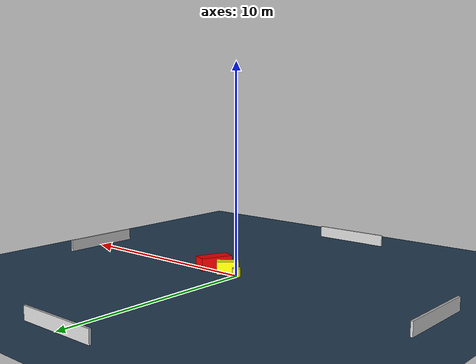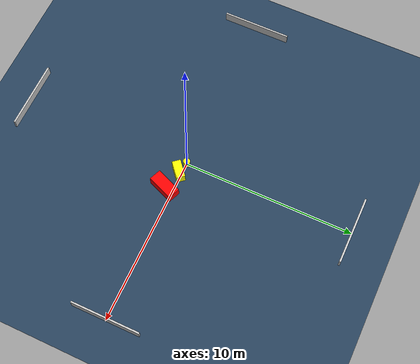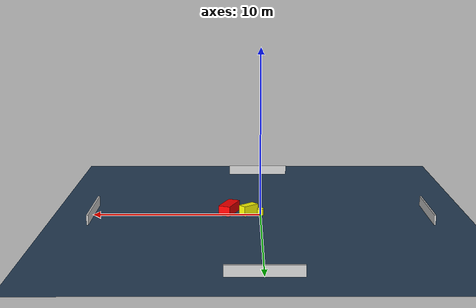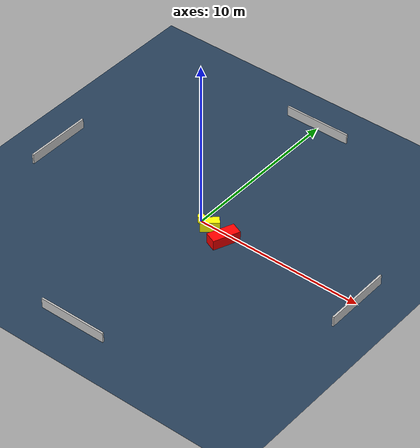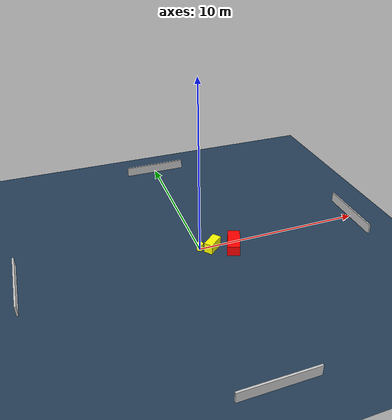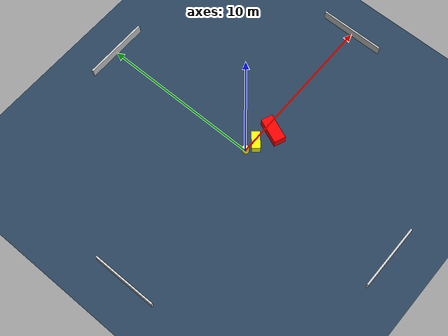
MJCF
<?xml version="1.0" ?>
<mujoco model="generated_environment">
  <option timestep="0.01" integrator="RK4" cone="elliptic"/>
  <default>
    <geom density="1"/>
  </default>
  <asset>
    <texture builtin="gradient" height="3072" name="skybox" rgb1="0.3 0.5 0.7" rgb2="0 0 0" type="skybox" width="512"/>
    <texture builtin="checker" height="300" name="groundplane" rgb1="0.2 0.3 0.4" rgb2="0.1 0.2 0.3" type="2d" width="300"/>
    <material name="groundplane" reflectance="0.2" texrepeat="5 5" texture="groundplane"/>
  </asset>
  <worldbody>
    <light dir="0 0 -1" directional="true" pos="0 0 1.5"/>
    <geom condim="3" friction="0.5 0.005 0.001" material="groundplane" name="floor" pos="0 0 0" size="0 0 0.05" type="plane"/>
    <body name="walls">
      <geom name="wall_1" condim="4" pos="-10.0 0.0 0.3" rgba="0.800000011920929 0.800000011920929 0.800000011920929 1.0" size="0.05 2.0 0.3" type="box"/>
      <geom name="wall_2" condim="4" pos="10.0 0.0 0.3" rgba="0.800000011920929 0.800000011920929 0.800000011920929 1.0" size="0.05 2.0 0.3" type="box"/>
      <geom name="wall_3" condim="4" pos="0.0 -10.0 0.3" rgba="0.800000011920929 0.800000011920929 0.800000011920929 1.0" size="2.0 0.05 0.3" type="box"/>
      <geom name="wall_4" condim="4" pos="0.0 10.0 0.3" rgba="0.800000011920929 0.800000011920929 0.800000011920929 1.0" size="2.0 0.05 0.3" type="box"/>
    </body>
    <body name="robot">
      <joint name="joint_x" type="slide" pos="0 0 0" axis="1 0 0"/>
      <joint name="joint_y" type="slide" pos="0 0 0" axis="0 1 0"/>
      <geom name="robot" type="cylinder" pos="0.0 0.0 0.2" size="0.2 0.2 0.0" mass="5.0" friction="1.0 0.005 0.0001" condim="4" rgba="1.0 1.0 0.0 1.0"/>
    </body>
    <body name="obstacle_1_movable">
      <geom name="obstacle_1_movable" condim="4" pos="0.7050807772358528 -0.17238119064113339 0.3" euler="0 0 40.177252119777634" friction="0.0 0.005 0.001" rgba="1.0 1.0 0.0 1.0" size="0.5250217650844207 0.25358452169445034 0.3" type="box" mass="0.1"/>
      <joint type="free"/>
    </body>
    <body name="obstacle_2_static">
      <geom name="obstacle_2_static" condim="4" pos="1.8732164998679737 -0.48681247525714344 0.3" euler="0 0 157.86158867150175" friction="0.0 0.005 0.001" rgba="1.0 0.0 0.0 1.0" size="0.35820976617366895 0.7947117338289 0.3" type="box"/>
    </body>
  </worldbody>
  <actuator>
    <motor name="actuator_x" joint="joint_x" gear="1" ctrlrange="-1 1"/>
    <motor name="actuator_y" joint="joint_y" gear="1" ctrlrange="-1 1"/>
  </actuator>
</mujoco>
